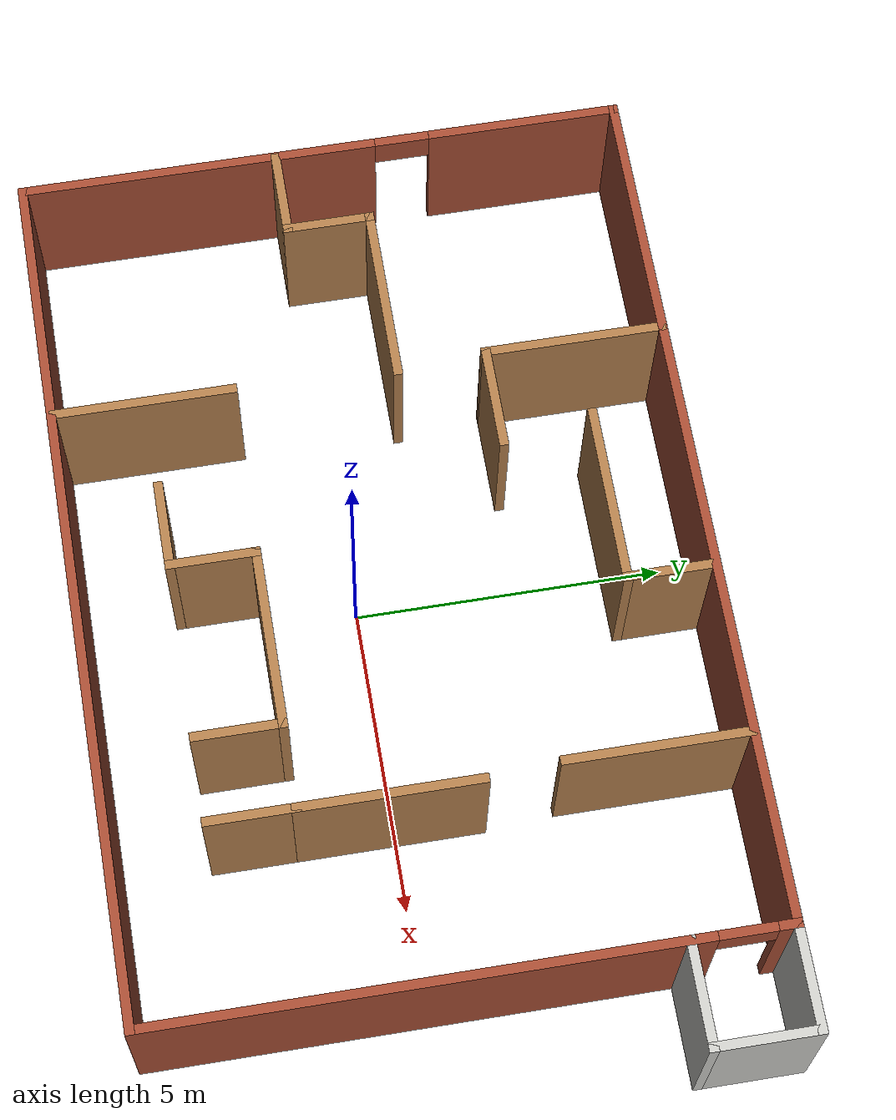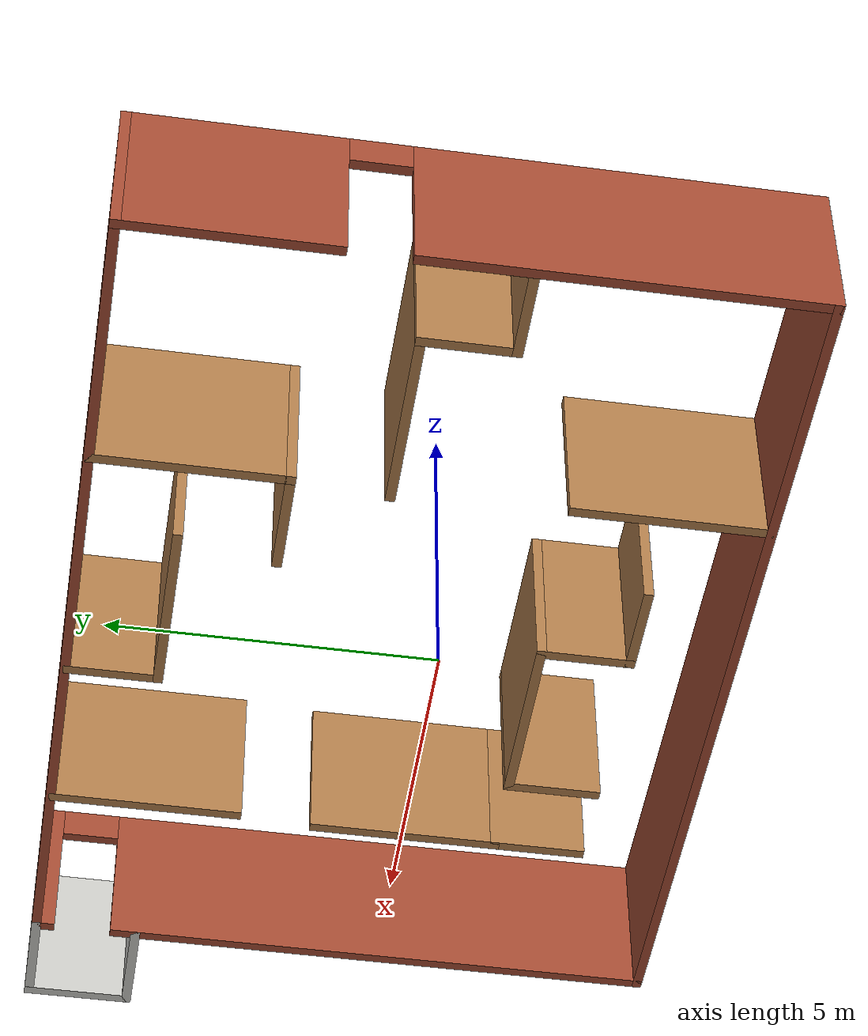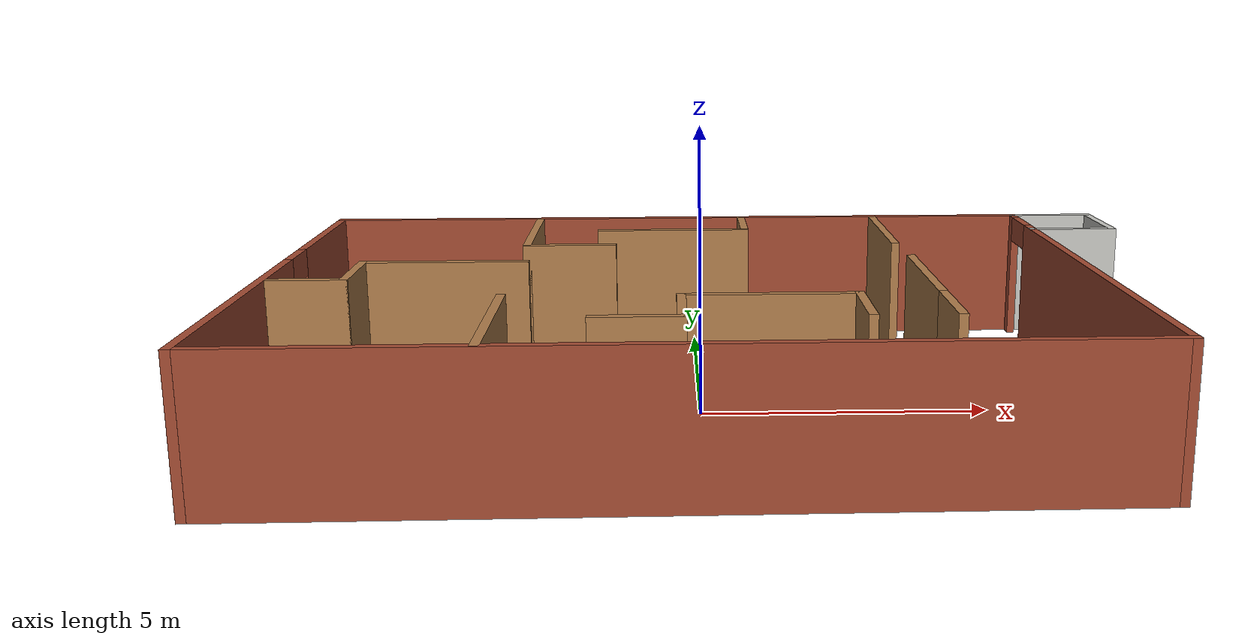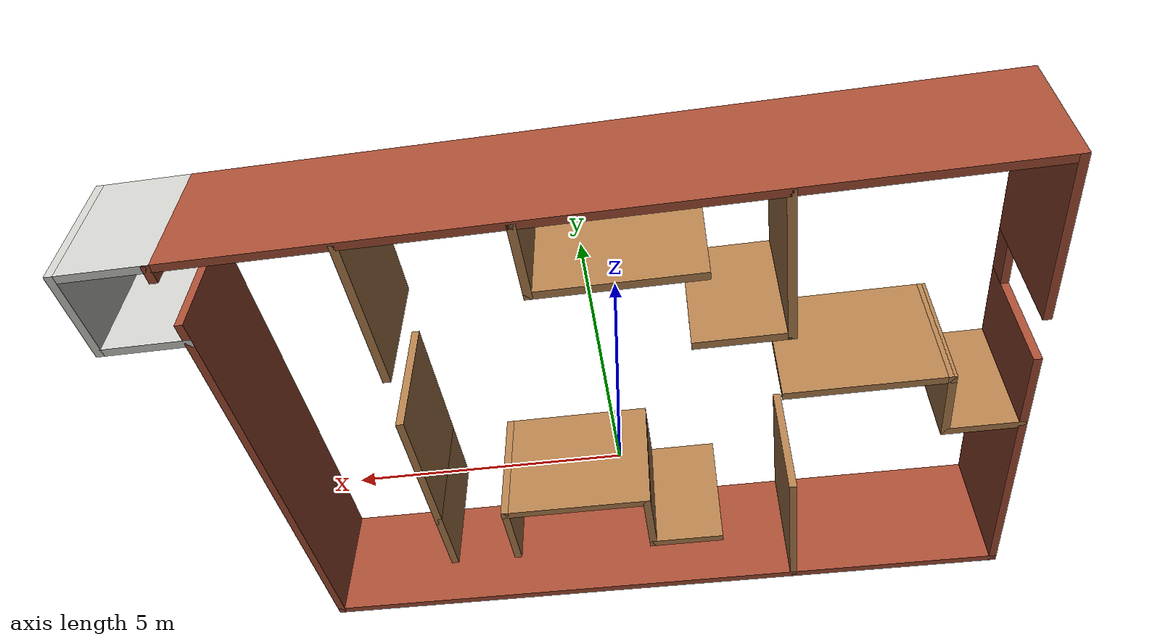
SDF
<?xml version='1.0'?>
<sdf version='1.7'>
  <model name='simple_maze'>
    <pose>0.48037 0.493197 0 0 -0 0</pose>
    <link name='Wall_0'>
      <pose>-7.79217 0.082776 0 0 -0 -1.5708</pose>
      <visual name='Wall_0_Visual_0'>
        <pose>-3.40644 0 1.25 0 -0 0</pose>
        <geometry>
          <box>
            <size>3.18711 0.15 2.5</size>
          </box>
        </geometry>
        <material>
          <script>
            <uri>file://media/materials/scripts/gazebo.material</uri>
            <name>Gazebo/Bricks</name>
          </script>
          <ambient>1 1 1 1</ambient>
        </material>
        <meta>
          <layer>0</layer>
        </meta>
      </visual>
      <collision name='Wall_0_Collision_0'>
        <geometry>
          <box>
            <size>3.18711 0.15 2.5</size>
          </box>
        </geometry>
        <pose>-3.40644 0 1.25 0 -0 0</pose>
      </collision>
      <visual name='Wall_0_Visual_1'>
        <pose>2.04356 0 1.25 0 -0 0</pose>
        <geometry>
          <box>
            <size>5.91289 0.15 2.5</size>
          </box>
        </geometry>
        <material>
          <script>
            <uri>file://media/materials/scripts/gazebo.material</uri>
            <name>Gazebo/Bricks</name>
          </script>
          <ambient>1 1 1 1</ambient>
        </material>
        <meta>
          <layer>0</layer>
        </meta>
      </visual>
      <collision name='Wall_0_Collision_1'>
        <geometry>
          <box>
            <size>5.91289 0.15 2.5</size>
          </box>
        </geometry>
        <pose>2.04356 0 1.25 0 -0 0</pose>
      </collision>
      <visual name='Wall_0_Visual_2'>
        <pose>-1.36289 0 2.25 0 -0 0</pose>
        <geometry>
          <box>
            <size>0.9 0.15 0.5</size>
          </box>
        </geometry>
        <material>
          <script>
            <uri>file://media/materials/scripts/gazebo.material</uri>
            <name>Gazebo/Bricks</name>
          </script>
          <ambient>1 1 1 1</ambient>
        </material>
        <meta>
          <layer>0</layer>
        </meta>
      </visual>
      <collision name='Wall_0_Collision_2'>
        <geometry>
          <box>
            <size>0.9 0.15 0.5</size>
          </box>
        </geometry>
        <pose>-1.36289 0 2.25 0 -0 0</pose>
      </collision>
    </link>
    <link name='Wall_1'>
      <collision name='Wall_1_Collision'>
        <geometry>
          <box>
            <size>14.25 0.15 2.5</size>
          </box>
        </geometry>
        <pose>0 0 1.25 0 -0 0</pose>
      </collision>
      <visual name='Wall_1_Visual'>
        <pose>0 0 1.25 0 -0 0</pose>
        <geometry>
          <box>
            <size>14.25 0.15 2.5</size>
          </box>
        </geometry>
        <material>
          <script>
            <uri>file://media/materials/scripts/gazebo.material</uri>
            <name>Gazebo/Bricks</name>
          </script>
          <ambient>1 1 1 1</ambient>
        </material>
        <meta>
          <layer>0</layer>
        </meta>
      </visual>
      <pose>-0.742173 -4.84222 0 0 -0 0</pose>
    </link>
    <link name='Wall_16'>
      <collision name='Wall_16_Collision'>
        <geometry>
          <box>
            <size>3 0.15 2.5</size>
          </box>
        </geometry>
        <pose>0 0 1.25 0 -0 0</pose>
      </collision>
      <visual name='Wall_16_Visual'>
        <pose>0 0 1.25 0 -0 0</pose>
        <geometry>
          <box>
            <size>3 0.15 2.5</size>
          </box>
        </geometry>
        <material>
          <script>
            <uri>file://media/materials/scripts/gazebo.material</uri>
            <name>Gazebo/Wood</name>
          </script>
          <ambient>1 1 1 1</ambient>
        </material>
        <meta>
          <layer>0</layer>
        </meta>
      </visual>
      <pose>-3.67492 -3.3746 0 0 -0 1.5708</pose>
    </link>
    <link name='Wall_2'>
      <pose>6.30783 0.082776 0 0 -0 1.5708</pose>
      <visual name='Wall_2_Visual_0'>
        <pose>-0.63259 0 1.25 0 -0 0</pose>
        <geometry>
          <box>
            <size>8.73482 0.15 2.5</size>
          </box>
        </geometry>
        <material>
          <script>
            <uri>file://media/materials/scripts/gazebo.material</uri>
            <name>Gazebo/Bricks</name>
          </script>
          <ambient>1 1 1 1</ambient>
        </material>
        <meta>
          <layer>0</layer>
        </meta>
      </visual>
      <collision name='Wall_2_Collision_0'>
        <geometry>
          <box>
            <size>8.73482 0.15 2.5</size>
          </box>
        </geometry>
        <pose>-0.63259 0 1.25 0 -0 0</pose>
      </collision>
      <visual name='Wall_2_Visual_1'>
        <pose>4.81741 0 1.25 0 -0 0</pose>
        <geometry>
          <box>
            <size>0.365179 0.15 2.5</size>
          </box>
        </geometry>
        <material>
          <script>
            <uri>file://media/materials/scripts/gazebo.material</uri>
            <name>Gazebo/Bricks</name>
          </script>
          <ambient>1 1 1 1</ambient>
        </material>
        <meta>
          <layer>0</layer>
        </meta>
      </visual>
      <collision name='Wall_2_Collision_1'>
        <geometry>
          <box>
            <size>0.365179 0.15 2.5</size>
          </box>
        </geometry>
        <pose>4.81741 0 1.25 0 -0 0</pose>
      </collision>
      <visual name='Wall_2_Visual_2'>
        <pose>4.18482 0 2.25 0 -0 0</pose>
        <geometry>
          <box>
            <size>0.9 0.15 0.5</size>
          </box>
        </geometry>
        <material>
          <script>
            <uri>file://media/materials/scripts/gazebo.material</uri>
            <name>Gazebo/Bricks</name>
          </script>
          <ambient>1 1 1 1</ambient>
        </material>
        <meta>
          <layer>0</layer>
        </meta>
      </visual>
      <collision name='Wall_2_Collision_2'>
        <geometry>
          <box>
            <size>0.9 0.15 0.5</size>
          </box>
        </geometry>
        <pose>4.18482 0 2.25 0 -0 0</pose>
      </collision>
    </link>
    <link name='Wall_25'>
      <collision name='Wall_25_Collision'>
        <geometry>
          <box>
            <size>1.5 0.15 2.5</size>
          </box>
        </geometry>
        <pose>0 0 1.25 0 -0 0</pose>
      </collision>
      <visual name='Wall_25_Visual'>
        <pose>0 0 1.25 0 -0 0</pose>
        <geometry>
          <box>
            <size>1.5 0.15 2.5</size>
          </box>
        </geometry>
        <material>
          <script>
            <uri>file://media/materials/scripts/gazebo.material</uri>
            <name>Gazebo/Wood</name>
          </script>
          <ambient>1 1 1 1</ambient>
        </material>
        <meta>
          <layer>0</layer>
        </meta>
      </visual>
      <pose>3.37498 -2.65267 0 0 -0 -1.5708</pose>
    </link>
    <link name='Wall_27'>
      <collision name='Wall_27_Collision'>
        <geometry>
          <box>
            <size>1.5 0.15 2.5</size>
          </box>
        </geometry>
        <pose>0 0 1.25 0 -0 0</pose>
      </collision>
      <visual name='Wall_27_Visual'>
        <pose>0 0 1.25 0 -0 0</pose>
        <geometry>
          <box>
            <size>1.5 0.15 2.5</size>
          </box>
        </geometry>
        <material>
          <script>
            <uri>file://media/materials/scripts/gazebo.material</uri>
            <name>Gazebo/Wood</name>
          </script>
          <ambient>1 1 1 1</ambient>
        </material>
        <meta>
          <layer>0</layer>
        </meta>
      </visual>
      <pose>2.02497 -2.65267 0 0 -0 1.5708</pose>
    </link>
    <link name='Wall_28'>
      <collision name='Wall_28_Collision'>
        <geometry>
          <box>
            <size>3 0.15 2.5</size>
          </box>
        </geometry>
        <pose>0 0 1.25 0 -0 0</pose>
      </collision>
      <visual name='Wall_28_Visual'>
        <pose>0 0 1.25 0 -0 0</pose>
        <geometry>
          <box>
            <size>3 0.15 2.5</size>
          </box>
        </geometry>
        <material>
          <script>
            <uri>file://media/materials/scripts/gazebo.material</uri>
            <name>Gazebo/Wood</name>
          </script>
          <ambient>1 1 1 1</ambient>
        </material>
        <meta>
          <layer>0</layer>
        </meta>
      </visual>
      <pose>0.599975 -1.97767 0 0 -0 3.14159</pose>
    </link>
    <link name='Wall_29'>
      <collision name='Wall_29_Collision'>
        <geometry>
          <box>
            <size>1.5 0.15 2.5</size>
          </box>
        </geometry>
        <pose>0 0 1.25 0 -0 0</pose>
      </collision>
      <visual name='Wall_29_Visual'>
        <pose>0 0 1.25 0 -0 0</pose>
        <geometry>
          <box>
            <size>1.5 0.15 2.5</size>
          </box>
        </geometry>
        <material>
          <script>
            <uri>file://media/materials/scripts/gazebo.material</uri>
            <name>Gazebo/Wood</name>
          </script>
          <ambient>1 1 1 1</ambient>
        </material>
        <meta>
          <layer>0</layer>
        </meta>
      </visual>
      <pose>-0.825025 -2.65267 0 0 -0 -1.5708</pose>
    </link>
    <link name='Wall_3'>
      <collision name='Wall_3_Collision'>
        <geometry>
          <box>
            <size>14.25 0.15 2.5</size>
          </box>
        </geometry>
        <pose>0 0 1.25 0 -0 0</pose>
      </collision>
      <visual name='Wall_3_Visual'>
        <pose>0 0 1.25 0 -0 0</pose>
        <geometry>
          <box>
            <size>14.25 0.15 2.5</size>
          </box>
        </geometry>
        <material>
          <script>
            <uri>file://media/materials/scripts/gazebo.material</uri>
            <name>Gazebo/Bricks</name>
          </script>
          <ambient>1 1 1 1</ambient>
        </material>
        <meta>
          <layer>0</layer>
        </meta>
      </visual>
      <pose>-0.742173 5.00778 0 0 -0 3.14159</pose>
    </link>
    <link name='Wall_30'>
      <collision name='Wall_30_Collision'>
        <geometry>
          <box>
            <size>1.5 0.15 2.5</size>
          </box>
        </geometry>
        <pose>0 0 1.25 0 -0 0</pose>
      </collision>
      <visual name='Wall_30_Visual'>
        <pose>0 0 1.25 0 -0 0</pose>
        <geometry>
          <box>
            <size>1.5 0.15 2.5</size>
          </box>
        </geometry>
        <material>
          <script>
            <uri>file://media/materials/scripts/gazebo.material</uri>
            <name>Gazebo/Wood</name>
          </script>
          <ambient>1 1 1 1</ambient>
        </material>
        <meta>
          <layer>0</layer>
        </meta>
      </visual>
      <pose>-1.50002 -3.32767 0 0 -0 3.14159</pose>
    </link>
    <link name='Wall_34'>
      <collision name='Wall_34_Collision'>
        <geometry>
          <box>
            <size>3 0.15 2.5</size>
          </box>
        </geometry>
        <pose>0 0 1.25 0 -0 0</pose>
      </collision>
      <visual name='Wall_34_Visual'>
        <pose>0 0 1.25 0 -0 0</pose>
        <geometry>
          <box>
            <size>3 0.15 2.5</size>
          </box>
        </geometry>
        <material>
          <script>
            <uri>file://media/materials/scripts/gazebo.material</uri>
            <name>Gazebo/Wood</name>
          </script>
          <ambient>1 1 1 1</ambient>
        </material>
        <meta>
          <layer>0</layer>
        </meta>
      </visual>
      <pose>3.37498 -0.552667 0 0 -0 1.5708</pose>
    </link>
    <link name='Wall_41'>
      <collision name='Wall_41_Collision'>
        <geometry>
          <box>
            <size>3 0.15 2.5</size>
          </box>
        </geometry>
        <pose>0 0 1.25 0 -0 0</pose>
      </collision>
      <visual name='Wall_41_Visual'>
        <pose>0 0 1.25 0 -0 0</pose>
        <geometry>
          <box>
            <size>3 0.15 2.5</size>
          </box>
        </geometry>
        <material>
          <script>
            <uri>file://media/materials/scripts/gazebo.material</uri>
            <name>Gazebo/Wood</name>
          </script>
          <ambient>1 1 1 1</ambient>
        </material>
        <meta>
          <layer>0</layer>
        </meta>
      </visual>
      <pose>-3.67492 3.55965 0 0 -0 -1.5708</pose>
    </link>
    <link name='Wall_42'>
      <collision name='Wall_42_Collision'>
        <geometry>
          <box>
            <size>1.75 0.15 2.5</size>
          </box>
        </geometry>
        <pose>0 0 1.25 0 -0 0</pose>
      </collision>
      <visual name='Wall_42_Visual'>
        <pose>0 0 1.25 0 -0 0</pose>
        <geometry>
          <box>
            <size>1.75 0.15 2.5</size>
          </box>
        </geometry>
        <material>
          <script>
            <uri>file://media/materials/scripts/gazebo.material</uri>
            <name>Gazebo/Wood</name>
          </script>
          <ambient>1 1 1 1</ambient>
        </material>
        <meta>
          <layer>0</layer>
        </meta>
      </visual>
      <pose>-2.87493 2.13465 0 0 -0 0</pose>
    </link>
    <link name='Wall_44'>
      <collision name='Wall_44_Collision'>
        <geometry>
          <box>
            <size>1.5 0.15 2.5</size>
          </box>
        </geometry>
        <pose>0 0 1.25 0 -0 0</pose>
      </collision>
      <visual name='Wall_44_Visual'>
        <pose>0 0 1.25 0 -0 0</pose>
        <geometry>
          <box>
            <size>1.5 0.15 2.5</size>
          </box>
        </geometry>
        <material>
          <script>
            <uri>file://media/materials/scripts/gazebo.material</uri>
            <name>Gazebo/Wood</name>
          </script>
          <ambient>1 1 1 1</ambient>
        </material>
        <meta>
          <layer>0</layer>
        </meta>
      </visual>
      <pose>0.511715 4.28651 0 0 -0 -1.5708</pose>
    </link>
    <link name='Wall_45'>
      <collision name='Wall_45_Collision'>
        <geometry>
          <box>
            <size>3 0.15 2.5</size>
          </box>
        </geometry>
        <pose>0 0 1.25 0 -0 0</pose>
      </collision>
      <visual name='Wall_45_Visual'>
        <pose>0 0 1.25 0 -0 0</pose>
        <geometry>
          <box>
            <size>3 0.15 2.5</size>
          </box>
        </geometry>
        <material>
          <script>
            <uri>file://media/materials/scripts/gazebo.material</uri>
            <name>Gazebo/Wood</name>
          </script>
          <ambient>1 1 1 1</ambient>
        </material>
        <meta>
          <layer>0</layer>
        </meta>
      </visual>
      <pose>-0.913285 3.61151 0 0 -0 3.14159</pose>
    </link>
    <link name='Wall_5'>
      <collision name='Wall_5_Collision'>
        <geometry>
          <box>
            <size>1.5 0.15 2.5</size>
          </box>
        </geometry>
        <pose>0 0 1.25 0 -0 0</pose>
      </collision>
      <visual name='Wall_5_Visual'>
        <pose>0 0 1.25 0 -0 0</pose>
        <geometry>
          <box>
            <size>1.5 0.15 2.5</size>
          </box>
        </geometry>
        <material>
          <script>
            <uri>file://media/materials/scripts/gazebo.material</uri>
            <name>Gazebo/Wood</name>
          </script>
          <ambient>1 1 1 1</ambient>
        </material>
        <meta>
          <layer>0</layer>
        </meta>
      </visual>
      <pose>-7.09404 -0.659222 0 0 -0 0</pose>
    </link>
    <link name='Wall_59'>
      <collision name='Wall_59_Collision'>
        <geometry>
          <box>
            <size>3 0.15 2.5</size>
          </box>
        </geometry>
        <pose>0 0 1.25 0 -0 0</pose>
      </collision>
      <visual name='Wall_59_Visual'>
        <pose>0 0 1.25 0 -0 0</pose>
        <geometry>
          <box>
            <size>3 0.15 2.5</size>
          </box>
        </geometry>
        <material>
          <script>
            <uri>file://media/materials/scripts/gazebo.material</uri>
            <name>Gazebo/Wood</name>
          </script>
          <ambient>1 1 1 1</ambient>
        </material>
        <meta>
          <layer>0</layer>
        </meta>
      </visual>
      <pose>3.28739 3.53652 0 0 -0 -1.5708</pose>
    </link>
    <link name='Wall_6'>
      <collision name='Wall_6_Collision'>
        <geometry>
          <box>
            <size>1.5 0.15 2.5</size>
          </box>
        </geometry>
        <pose>0 0 1.25 0 -0 0</pose>
      </collision>
      <visual name='Wall_6_Visual'>
        <pose>0 0 1.25 0 -0 0</pose>
        <geometry>
          <box>
            <size>1.5 0.15 2.5</size>
          </box>
        </geometry>
        <material>
          <script>
            <uri>file://media/materials/scripts/gazebo.material</uri>
            <name>Gazebo/Wood</name>
          </script>
          <ambient>1 1 1 1</ambient>
        </material>
        <meta>
          <layer>0</layer>
        </meta>
      </visual>
      <pose>-6.41904 0.015778 0 0 -0 1.5708</pose>
    </link>
    <link name='Wall_67'>
      <collision name='Wall_67_Collision'>
        <geometry>
          <box>
            <size>1.75 0.15 2.5</size>
          </box>
        </geometry>
        <pose>0 0 1.25 0 -0 0</pose>
      </collision>
      <visual name='Wall_67_Visual'>
        <pose>0 0 1.25 0 -0 0</pose>
        <geometry>
          <box>
            <size>1.75 0.15 2.5</size>
          </box>
        </geometry>
        <material>
          <script>
            <uri>file://media/materials/scripts/gazebo.material</uri>
            <name>Gazebo/CeilingTiled</name>
          </script>
          <ambient>1 1 1 1</ambient>
        </material>
        <meta>
          <layer>0</layer>
        </meta>
      </visual>
      <pose>7.10783 5.00778 0 0 -0 0</pose>
    </link>
    <link name='Wall_68'>
      <collision name='Wall_68_Collision'>
        <geometry>
          <box>
            <size>1.75 0.15 2.5</size>
          </box>
        </geometry>
        <pose>0 0 1.25 0 -0 0</pose>
      </collision>
      <visual name='Wall_68_Visual'>
        <pose>0 0 1.25 0 -0 0</pose>
        <geometry>
          <box>
            <size>1.75 0.15 2.5</size>
          </box>
        </geometry>
        <material>
          <script>
            <uri>file://media/materials/scripts/gazebo.material</uri>
            <name>Gazebo/CeilingTiled</name>
          </script>
          <ambient>1 1 1 1</ambient>
        </material>
        <meta>
          <layer>0</layer>
        </meta>
      </visual>
      <pose>7.90783 4.20778 0 0 -0 -1.5708</pose>
    </link>
    <link name='Wall_69'>
      <collision name='Wall_69_Collision'>
        <geometry>
          <box>
            <size>1.75 0.15 2.5</size>
          </box>
        </geometry>
        <pose>0 0 1.25 0 -0 0</pose>
      </collision>
      <visual name='Wall_69_Visual'>
        <pose>0 0 1.25 0 -0 0</pose>
        <geometry>
          <box>
            <size>1.75 0.15 2.5</size>
          </box>
        </geometry>
        <material>
          <script>
            <uri>file://media/materials/scripts/gazebo.material</uri>
            <name>Gazebo/CeilingTiled</name>
          </script>
          <ambient>1 1 1 1</ambient>
        </material>
        <meta>
          <layer>0</layer>
        </meta>
      </visual>
      <pose>7.10783 3.40778 0 0 -0 3.14159</pose>
    </link>
    <link name='Wall_7'>
      <collision name='Wall_7_Collision'>
        <geometry>
          <box>
            <size>3 0.15 2.5</size>
          </box>
        </geometry>
        <pose>0 0 1.25 0 -0 0</pose>
      </collision>
      <visual name='Wall_7_Visual'>
        <pose>0 0 1.25 0 -0 0</pose>
        <geometry>
          <box>
            <size>3 0.15 2.5</size>
          </box>
        </geometry>
        <material>
          <script>
            <uri>file://media/materials/scripts/gazebo.material</uri>
            <name>Gazebo/Wood</name>
          </script>
          <ambient>1 1 1 1</ambient>
        </material>
        <meta>
          <layer>0</layer>
        </meta>
      </visual>
      <pose>-4.99404 0.690778 0 0 -0 0</pose>
    </link>

    <static>1</static>
  </model>
</sdf>
